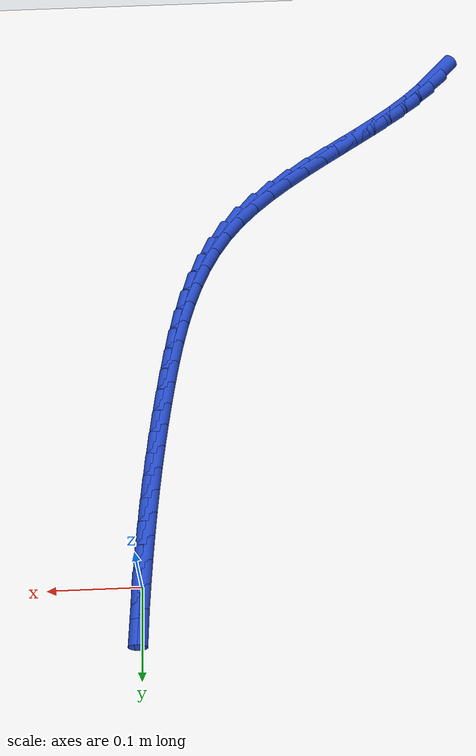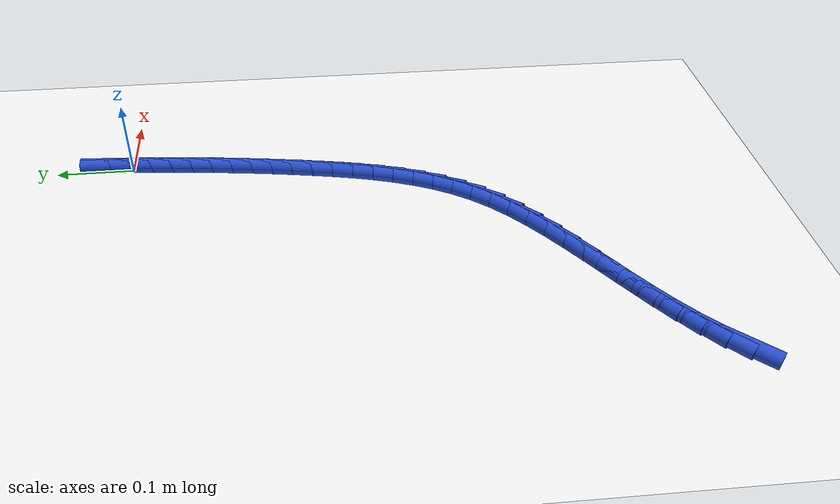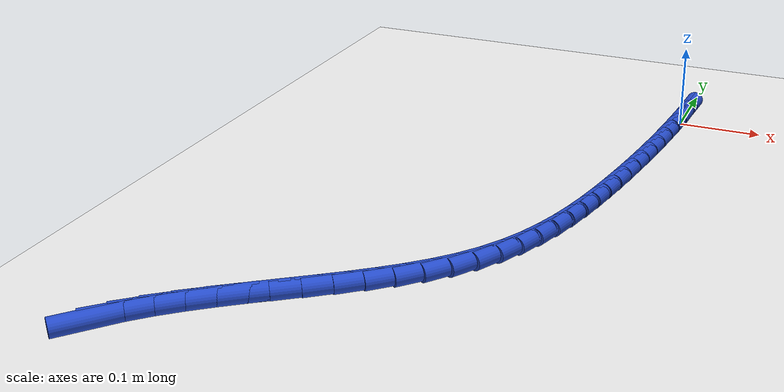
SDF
<sdf version="1.6">
 <world name="default">
  <model name="ground_plane">
   <static>1</static>
   <link name="link">
    <collision name="collision">
     <geometry><plane><normal>0 0 1</normal><size>100 100</size></plane></geometry>
     <surface><friction><ode><mu>100</mu><mu2>50</mu2></ode></friction></surface>
    </collision>
    <visual name="visual">
     <cast_shadows>0</cast_shadows>
     <geometry><plane><normal>0 0 1</normal><size>100 100</size></plane></geometry>
     <material>
      <script><uri>file://media/materials/scripts/gazebo.material</uri><name>Gazebo/WhiteGlow</name></script>
     </material>
    </visual>
   </link>
  </model>
  <model name="line">
   <link name="link_0">
    <pose>6.071532165918825e-18 3.469446951953614e-17 0.01 0 1.57 1.5069096707676282</pose>
    <collision name="collision">
     <geometry><cylinder><radius>0.01</radius><length>0.08</length></cylinder></geometry>
    </collision>
    <visual name="visual">
     <material>
      <script><name>Gazebo/Blue</name><uri>file://media/materials/scripts/gazebo.material</uri></script>
     </material>
     <geometry><cylinder><radius>0.01</radius><length>0.08</length></cylinder></geometry>
    </visual>
   </link>
   <link name="link_1">
    <pose>0.0017580394626447399 0.02748065253745607 0.01 0 1.57 1.5268968119250108</pose>
    <collision name="collision">
     <geometry><cylinder><radius>0.01</radius><length>0.08</length></cylinder></geometry>
    </collision>
    <visual name="visual">
     <material>
      <script><name>Gazebo/Blue</name><uri>file://media/materials/scripts/gazebo.material</uri></script>
     </material>
     <geometry><cylinder><radius>0.01</radius><length>0.08</length></cylinder></geometry>
    </visual>
   </link>
   <link name="link_240">
    <pose>-0.3815417173152744 -0.6776541036859145 0.01 0 1.57 0.8369858662003336</pose>
    <collision name="collision">
     <geometry><cylinder><radius>0.01</radius><length>0.08</length></cylinder></geometry>
    </collision>
    <visual name="visual">
     <material>
      <script><name>Gazebo/Blue</name><uri>file://media/materials/scripts/gazebo.material</uri></script>
     </material>
     <geometry><cylinder><radius>0.01</radius><length>0.08</length></cylinder></geometry>
    </visual>
   </link>
   <link name="link_241">
    <pose>-0.36395137986167314 -0.6581483654569782 0.01 0 1.57 0.7557428031745855</pose>
    <collision name="collision">
     <geometry><cylinder><radius>0.01</radius><length>0.08</length></cylinder></geometry>
    </collision>
    <visual name="visual">
     <material>
      <script><name>Gazebo/Blue</name><uri>file://media/materials/scripts/gazebo.material</uri></script>
     </material>
     <geometry><cylinder><radius>0.01</radius><length>0.08</length></cylinder></geometry>
    </visual>
   </link>
   <link name="link_242">
    <pose>-0.34423294761484796 -0.6395660876433485 0.01 0 1.57 0.6941382424491146</pose>
    <collision name="collision">
     <geometry><cylinder><radius>0.01</radius><length>0.08</length></cylinder></geometry>
    </collision>
    <visual name="visual">
     <material>
      <script><name>Gazebo/Blue</name><uri>file://media/materials/scripts/gazebo.material</uri></script>
     </material>
     <geometry><cylinder><radius>0.01</radius><length>0.08</length></cylinder></geometry>
    </visual>
   </link>
   <link name="link_243">
    <pose>-0.3227817219877531 -0.6217118653626102 0.01 0 1.57 0.6499301454545422</pose>
    <collision name="collision">
     <geometry><cylinder><radius>0.01</radius><length>0.08</length></cylinder></geometry>
    </collision>
    <visual name="visual">
     <material>
      <script><name>Gazebo/Blue</name><uri>file://media/materials/scripts/gazebo.material</uri></script>
     </material>
     <geometry><cylinder><radius>0.01</radius><length>0.08</length></cylinder></geometry>
    </visual>
   </link>
   <link name="link_244">
    <pose>-0.29999300439334037 -0.6043902937323467 0.01 0 1.57 0.6211885479378583</pose>
    <collision name="collision">
     <geometry><cylinder><radius>0.01</radius><length>0.08</length></cylinder></geometry>
    </collision>
    <visual name="visual">
     <material>
      <script><name>Gazebo/Blue</name><uri>file://media/materials/scripts/gazebo.material</uri></script>
     </material>
     <geometry><cylinder><radius>0.01</radius><length>0.08</length></cylinder></geometry>
    </visual>
   </link>
   <link name="link_245">
    <pose>-0.27626209624456427 -0.5874059678701427 0.01 0 1.57 0.6065124183367913</pose>
    <collision name="collision">
     <geometry><cylinder><radius>0.01</radius><length>0.08</length></cylinder></geometry>
    </collision>
    <visual name="visual">
     <material>
      <script><name>Gazebo/Blue</name><uri>file://media/materials/scripts/gazebo.material</uri></script>
     </material>
     <geometry><cylinder><radius>0.01</radius><length>0.08</length></cylinder></geometry>
    </visual>
   </link>
   <link name="link_246">
    <pose>-0.2519842989543771 -0.5705634828935817 0.01 0 1.57 0.6050851083350299</pose>
    <collision name="collision">
     <geometry><cylinder><radius>0.01</radius><length>0.08</length></cylinder></geometry>
    </collision>
    <visual name="visual">
     <material>
      <script><name>Gazebo/Blue</name><uri>file://media/materials/scripts/gazebo.material</uri></script>
     </material>
     <geometry><cylinder><radius>0.01</radius><length>0.08</length></cylinder></geometry>
    </visual>
   </link>
   <link name="link_247">
    <pose>-0.22755491393573135 -0.5536674339202472 0.01 0 1.57 0.6166685485978629</pose>
    <collision name="collision">
     <geometry><cylinder><radius>0.01</radius><length>0.08</length></cylinder></geometry>
    </collision>
    <visual name="visual">
     <material>
      <script><name>Gazebo/Blue</name><uri>file://media/materials/scripts/gazebo.material</uri></script>
     </material>
     <geometry><cylinder><radius>0.01</radius><length>0.08</length></cylinder></geometry>
    </visual>
   </link>
   <link name="link_248">
    <pose>-0.20336924260158135 -0.5365224160677242 0.01 0 1.57 0.6415794165017027</pose>
    <collision name="collision">
     <geometry><cylinder><radius>0.01</radius><length>0.08</length></cylinder></geometry>
    </collision>
    <visual name="visual">
     <material>
      <script><name>Gazebo/Blue</name><uri>file://media/materials/scripts/gazebo.material</uri></script>
     </material>
     <geometry><cylinder><radius>0.01</radius><length>0.08</length></cylinder></geometry>
    </visual>
   </link>
   <link name="link_249">
    <pose>-0.179822586364879 -0.5189330244535959 0.01 0 1.57 0.6806525725403707</pose>
    <collision name="collision">
     <geometry><cylinder><radius>0.01</radius><length>0.08</length></cylinder></geometry>
    </collision>
    <visual name="visual">
     <material>
      <script><name>Gazebo/Blue</name><uri>file://media/materials/scripts/gazebo.material</uri></script>
     </material>
     <geometry><cylinder><radius>0.01</radius><length>0.08</length></cylinder></geometry>
    </visual>
   </link>
   <link name="link_250">
    <pose>-0.15731024663857868 -0.5007038541954472 0.01 0 1.57 0.735166108354457</pose>
    <collision name="collision">
     <geometry><cylinder><radius>0.01</radius><length>0.08</length></cylinder></geometry>
    </collision>
    <visual name="visual">
     <material>
      <script><name>Gazebo/Blue</name><uri>file://media/materials/scripts/gazebo.material</uri></script>
     </material>
     <geometry><cylinder><radius>0.01</radius><length>0.08</length></cylinder></geometry>
    </visual>
   </link>
   <link name="link_251">
    <pose>-0.13622752483563208 -0.4816395004108606 0.01 0 1.57 0.8066676705640423</pose>
    <collision name="collision">
     <geometry><cylinder><radius>0.01</radius><length>0.08</length></cylinder></geometry>
    </collision>
    <visual name="visual">
     <material>
      <script><name>Gazebo/Blue</name><uri>file://media/materials/scripts/gazebo.material</uri></script>
     </material>
     <geometry><cylinder><radius>0.01</radius><length>0.08</length></cylinder></geometry>
    </visual>
   </link>
   <link name="link_252">
    <pose>-0.11696972236899368 -0.4615445582174218 0.01 0 1.57 0.8963302812289147</pose>
    <collision name="collision">
     <geometry><cylinder><radius>0.01</radius><length>0.08</length></cylinder></geometry>
    </collision>
    <visual name="visual">
     <material>
      <script><name>Gazebo/Blue</name><uri>file://media/materials/scripts/gazebo.material</uri></script>
     </material>
     <geometry><cylinder><radius>0.01</radius><length>0.08</length></cylinder></geometry>
    </visual>
   </link>
   <link name="link_253">
    <pose>-0.09992562469188515 -0.44022742574466867 0.01 0 1.57 0.9935814791930014</pose>
    <collision name="collision">
     <geometry><cylinder><radius>0.01</radius><length>0.08</length></cylinder></geometry>
    </collision>
    <visual name="visual">
     <material>
      <script><name>Gazebo/Blue</name><uri>file://media/materials/scripts/gazebo.material</uri></script>
     </material>
     <geometry><cylinder><radius>0.01</radius><length>0.08</length></cylinder></geometry>
    </visual>
   </link>
   <link name="link_254">
    <pose>-0.08522268394884157 -0.4176490271871371 0.01 0 1.57 1.0824731808028427</pose>
    <collision name="collision">
     <geometry><cylinder><radius>0.01</radius><length>0.08</length></cylinder></geometry>
    </collision>
    <visual name="visual">
     <material>
      <script><name>Gazebo/Blue</name><uri>file://media/materials/scripts/gazebo.material</uri></script>
     </material>
     <geometry><cylinder><radius>0.01</radius><length>0.08</length></cylinder></geometry>
    </visual>
   </link>
   <link name="link_255">
    <pose>-0.07264415389625006 -0.3939711766526464 0.01 0 1.57 1.1607400010044742</pose>
    <collision name="collision">
     <geometry><cylinder><radius>0.01</radius><length>0.08</length></cylinder></geometry>
    </collision>
    <visual name="visual">
     <material>
      <script><name>Gazebo/Blue</name><uri>file://media/materials/scripts/gazebo.material</uri></script>
     </material>
     <geometry><cylinder><radius>0.01</radius><length>0.08</length></cylinder></geometry>
    </visual>
   </link>
   <link name="link_256">
    <pose>-0.06194980421690054 -0.3693693946278736 0.01 0 1.57 1.2278857685615983</pose>
    <collision name="collision">
     <geometry><cylinder><radius>0.01</radius><length>0.08</length></cylinder></geometry>
    </collision>
    <visual name="visual">
     <material>
      <script><name>Gazebo/Blue</name><uri>file://media/materials/scripts/gazebo.material</uri></script>
     </material>
     <geometry><cylinder><radius>0.01</radius><length>0.08</length></cylinder></geometry>
    </visual>
   </link>
   <link name="link_257">
    <pose>-0.05289940459358163 -0.34401920159949284 0.01 0 1.57 1.2839553259939114</pose>
    <collision name="collision">
     <geometry><cylinder><radius>0.01</radius><length>0.08</length></cylinder></geometry>
    </collision>
    <visual name="visual">
     <material>
      <script><name>Gazebo/Blue</name><uri>file://media/materials/scripts/gazebo.material</uri></script>
     </material>
     <geometry><cylinder><radius>0.01</radius><length>0.08</length></cylinder></geometry>
    </visual>
   </link>
   <link name="link_258">
    <pose>-0.04525272470908223 -0.3180961180541787 0.01 0 1.57 1.3292864611672899</pose>
    <collision name="collision">
     <geometry><cylinder><radius>0.01</radius><length>0.08</length></cylinder></geometry>
    </collision>
    <visual name="visual">
     <material>
      <script><name>Gazebo/Blue</name><uri>file://media/materials/scripts/gazebo.material</uri></script>
     </material>
     <geometry><cylinder><radius>0.01</radius><length>0.08</length></cylinder></geometry>
    </visual>
   </link>
   <link name="link_259">
    <pose>-0.03876953424619187 -0.2917756644786079 0.01 0 1.57 1.364307645797353</pose>
    <collision name="collision">
     <geometry><cylinder><radius>0.01</radius><length>0.08</length></cylinder></geometry>
    </collision>
    <visual name="visual">
     <material>
      <script><name>Gazebo/Blue</name><uri>file://media/materials/scripts/gazebo.material</uri></script>
     </material>
     <geometry><cylinder><radius>0.01</radius><length>0.08</length></cylinder></geometry>
    </visual>
   </link>
   <link name="link_260">
    <pose>-0.033209602887699204 -0.26523336135945424 0.01 0 1.57 1.389392135539396</pose>
    <collision name="collision">
     <geometry><cylinder><radius>0.01</radius><length>0.08</length></cylinder></geometry>
    </collision>
    <visual name="visual">
     <material>
      <script><name>Gazebo/Blue</name><uri>file://media/materials/scripts/gazebo.material</uri></script>
     </material>
     <geometry><cylinder><radius>0.01</radius><length>0.08</length></cylinder></geometry>
    </visual>
   </link>
   <link name="link_261">
    <pose>-0.028332700316393657 -0.23864472918339413 0.01 0 1.57 1.4053046061694052</pose>
    <collision name="collision">
     <geometry><cylinder><radius>0.01</radius><length>0.08</length></cylinder></geometry>
    </collision>
    <visual name="visual">
     <material>
      <script><name>Gazebo/Blue</name><uri>file://media/materials/scripts/gazebo.material</uri></script>
     </material>
     <geometry><cylinder><radius>0.01</radius><length>0.08</length></cylinder></geometry>
    </visual>
   </link>
   <link name="link_262">
    <pose>-0.02391120629421805 -0.21217177002949897 0.01 0 1.57 1.4177534254305881</pose>
    <collision name="collision">
     <geometry><cylinder><radius>0.01</radius><length>0.08</length></cylinder></geometry>
    </collision>
    <visual name="visual">
     <material>
      <script><name>Gazebo/Blue</name><uri>file://media/materials/scripts/gazebo.material</uri></script>
     </material>
     <geometry><cylinder><radius>0.01</radius><length>0.08</length></cylinder></geometry>
    </visual>
   </link>
   <link name="link_263">
    <pose>-0.019848882823122947 -0.18583564001937958 0.01 0 1.57 1.4300322631568494</pose>
    <collision name="collision">
     <geometry><cylinder><radius>0.01</radius><length>0.08</length></cylinder></geometry>
    </collision>
    <visual name="visual">
     <material>
      <script><name>Gazebo/Blue</name><uri>file://media/materials/scripts/gazebo.material</uri></script>
     </material>
     <geometry><cylinder><radius>0.01</radius><length>0.08</length></cylinder></geometry>
    </visual>
   </link>
   <link name="link_264">
    <pose>-0.016127550179934412 -0.15957381431089776 0.01 0 1.57 1.442089208731598</pose>
    <collision name="collision">
     <geometry><cylinder><radius>0.01</radius><length>0.08</length></cylinder></geometry>
    </collision>
    <visual name="visual">
     <material>
      <script><name>Gazebo/Blue</name><uri>file://media/materials/scripts/gazebo.material</uri></script>
     </material>
     <geometry><cylinder><radius>0.01</radius><length>0.08</length></cylinder></geometry>
    </visual>
   </link>
   <link name="link_265">
    <pose>-0.012730059048459027 -0.1333226634327264 0.01 0 1.57 1.45383014079932</pose>
    <collision name="collision">
     <geometry><cylinder><radius>0.01</radius><length>0.08</length></cylinder></geometry>
    </collision>
    <visual name="visual">
     <material>
      <script><name>Gazebo/Blue</name><uri>file://media/materials/scripts/gazebo.material</uri></script>
     </material>
     <geometry><cylinder><radius>0.01</radius><length>0.08</length></cylinder></geometry>
    </visual>
   </link>
   <link name="link_266">
    <pose>-0.009639260112502941 -0.10701855791353486 0.01 0 1.57 1.4651658635480647</pose>
    <collision name="collision">
     <geometry><cylinder><radius>0.01</radius><length>0.08</length></cylinder></geometry>
    </collision>
    <visual name="visual">
     <material>
      <script><name>Gazebo/Blue</name><uri>file://media/materials/scripts/gazebo.material</uri></script>
     </material>
     <geometry><cylinder><radius>0.01</radius><length>0.08</length></cylinder></geometry>
    </visual>
   </link>
   <link name="link_267">
    <pose>-0.0068380040558727 -0.08059786828199592 0.01 0 1.57 1.4760143880996661</pose>
    <collision name="collision">
     <geometry><cylinder><radius>0.01</radius><length>0.08</length></cylinder></geometry>
    </collision>
    <visual name="visual">
     <material>
      <script><name>Gazebo/Blue</name><uri>file://media/materials/scripts/gazebo.material</uri></script>
     </material>
     <geometry><cylinder><radius>0.01</radius><length>0.08</length></cylinder></geometry>
    </visual>
   </link>
   <link name="link_268">
    <pose>-0.004309141562374566 -0.05399696506677984 0.01 0 1.57 1.4863028812088335</pose>
    <collision name="collision">
     <geometry><cylinder><radius>0.01</radius><length>0.08</length></cylinder></geometry>
    </collision>
    <visual name="visual">
     <material>
      <script><name>Gazebo/Blue</name><uri>file://media/materials/scripts/gazebo.material</uri></script>
     </material>
     <geometry><cylinder><radius>0.01</radius><length>0.08</length></cylinder></geometry>
    </visual>
   </link>
   <link name="link_269">
    <pose>-0.0020355233158148335 -0.027152218796556965 0.01 0 1.57 1.4959691872969845</pose>
    <collision name="collision">
     <geometry><cylinder><radius>0.01</radius><length>0.08</length></cylinder></geometry>
    </collision>
    <visual name="visual">
     <material>
      <script><name>Gazebo/Blue</name><uri>file://media/materials/scripts/gazebo.material</uri></script>
     </material>
     <geometry><cylinder><radius>0.01</radius><length>0.08</length></cylinder></geometry>
    </visual>
   </link>
   <link name="link_270">
    <pose>3.0357660829594124e-18 6.938893903907228e-18 0.01 0 1.57 1.504962866138221</pose>
    <collision name="collision">
     <geometry><cylinder><radius>0.01</radius><length>0.08</length></cylinder></geometry>
    </collision>
    <visual name="visual">
     <material>
      <script><name>Gazebo/Blue</name><uri>file://media/materials/scripts/gazebo.material</uri></script>
     </material>
     <geometry><cylinder><radius>0.01</radius><length>0.08</length></cylinder></geometry>
    </visual>
   </link>
   <link name="link_271">
    <pose>0.001814577701263709 0.027523320794221616 0.01 0 1.57 1.513245727278653</pose>
    <collision name="collision">
     <geometry><cylinder><radius>0.01</radius><length>0.08</length></cylinder></geometry>
    </collision>
    <visual name="visual">
     <material>
      <script><name>Gazebo/Blue</name><uri>file://media/materials/scripts/gazebo.material</uri></script>
     </material>
     <geometry><cylinder><radius>0.01</radius><length>0.08</length></cylinder></geometry>
    </visual>
   </link>
  </model>
 </world>
</sdf>
